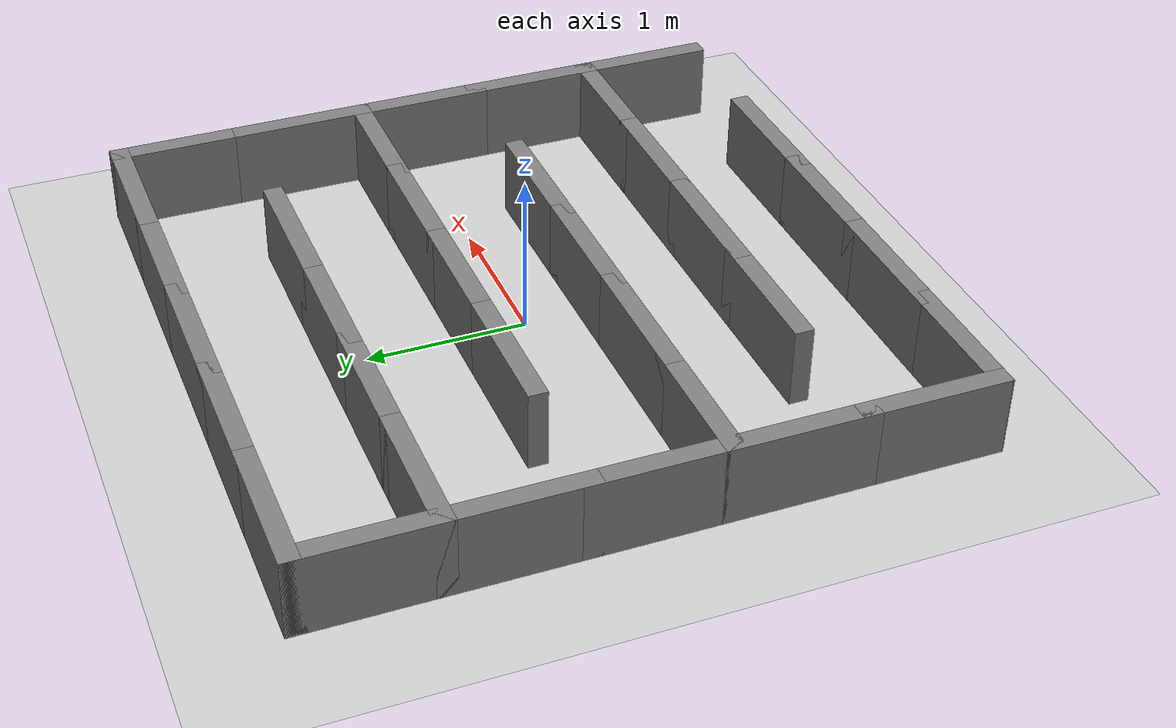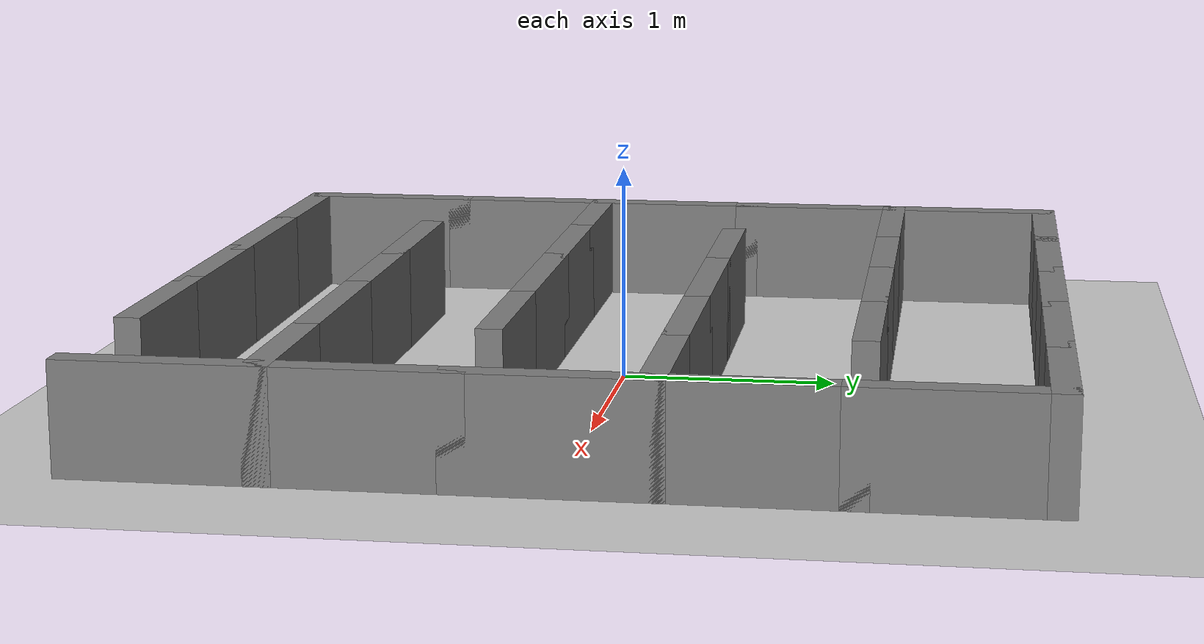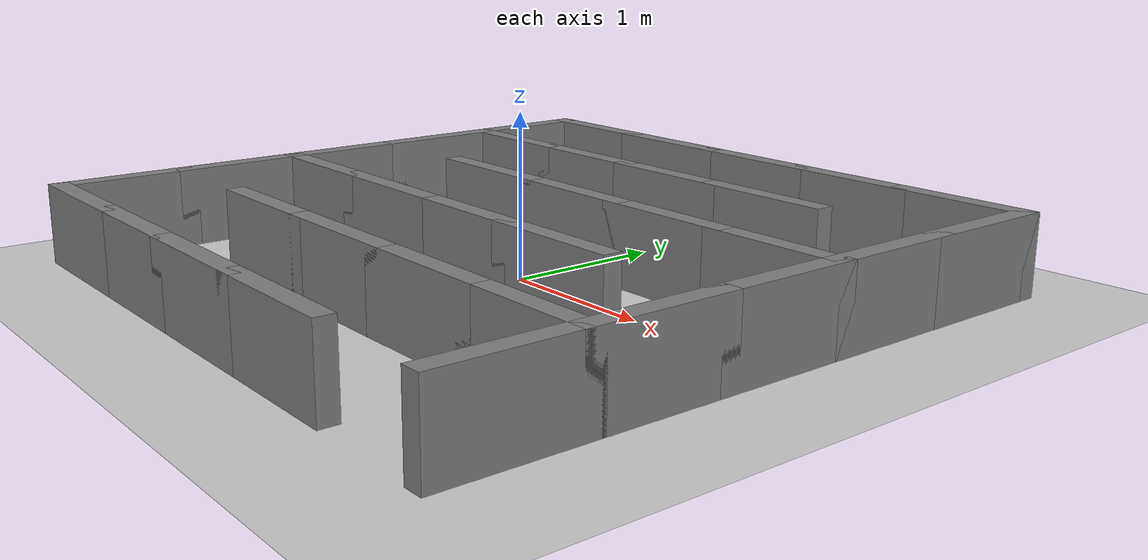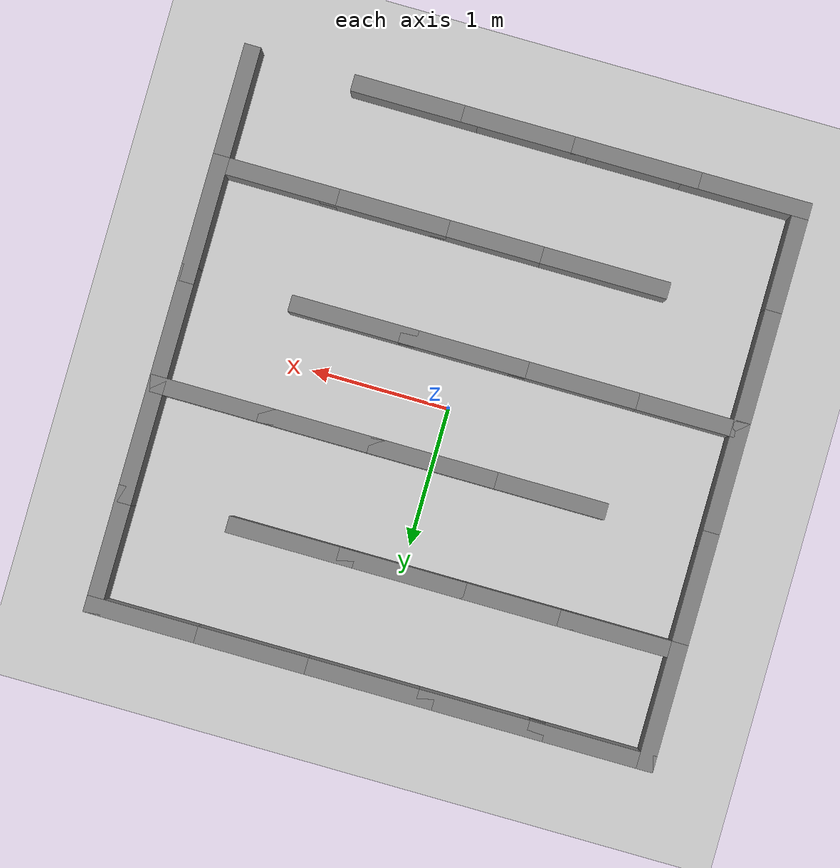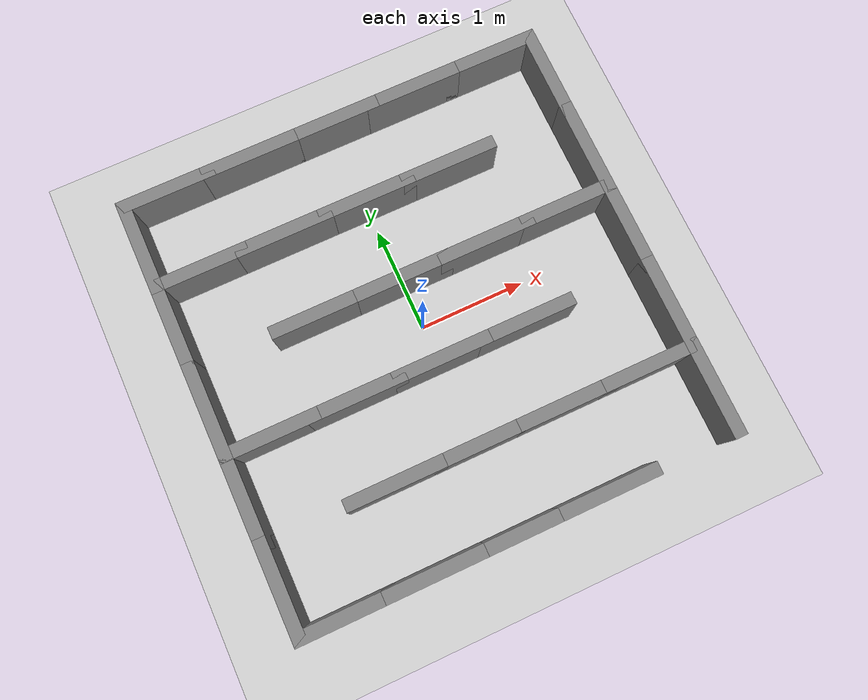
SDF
<?xml version="1.0"?>
<sdf version="1.6">
  <world name="maze_world">
    <include><uri>model://ground_plane</uri></include>
    <include><uri>model://sun</uri></include>
    <scene><shadows>false</shadows></scene>
    <gui fullscreen="0">
      <camera name="user_camera">
        <pose>0 0 10 0 1.5708 0</pose>
        <view_controller>orbit</view_controller>
      </camera>
    </gui>
    <physics type="ode">
      <real_time_update_rate>2000.0</real_time_update_rate>
      <max_step_size>0.001</max_step_size>
      <real_time_factor>2.0</real_time_factor>
    </physics>
    <!-- SNAKE MAZE WALLS -->

    <model name="hw_0">
      <static>true</static>
      <pose>-1.6000 2.0000 0.25 0 0 0</pose>
      <link name="link">
        <collision name="col"><geometry><box><size>0.9200 0.1200 0.5</size></box></geometry></collision>
        <visual name="vis"><geometry><box><size>0.9200 0.1200 0.5</size></box></geometry>
          <material><ambient>0.35 0.35 0.35 1</ambient><diffuse>0.5 0.5 0.5 1</diffuse></material></visual>
      </link>
    </model>
    <model name="hw_1">
      <static>true</static>
      <pose>-0.8000 2.0000 0.25 0 0 0</pose>
      <link name="link">
        <collision name="col"><geometry><box><size>0.9200 0.1200 0.5</size></box></geometry></collision>
        <visual name="vis"><geometry><box><size>0.9200 0.1200 0.5</size></box></geometry>
          <material><ambient>0.35 0.35 0.35 1</ambient><diffuse>0.5 0.5 0.5 1</diffuse></material></visual>
      </link>
    </model>
    <model name="hw_2">
      <static>true</static>
      <pose>0.0000 2.0000 0.25 0 0 0</pose>
      <link name="link">
        <collision name="col"><geometry><box><size>0.9200 0.1200 0.5</size></box></geometry></collision>
        <visual name="vis"><geometry><box><size>0.9200 0.1200 0.5</size></box></geometry>
          <material><ambient>0.35 0.35 0.35 1</ambient><diffuse>0.5 0.5 0.5 1</diffuse></material></visual>
      </link>
    </model>
    <model name="hw_3">
      <static>true</static>
      <pose>0.8000 2.0000 0.25 0 0 0</pose>
      <link name="link">
        <collision name="col"><geometry><box><size>0.9200 0.1200 0.5</size></box></geometry></collision>
        <visual name="vis"><geometry><box><size>0.9200 0.1200 0.5</size></box></geometry>
          <material><ambient>0.35 0.35 0.35 1</ambient><diffuse>0.5 0.5 0.5 1</diffuse></material></visual>
      </link>
    </model>
    <model name="hw_4">
      <static>true</static>
      <pose>1.6000 2.0000 0.25 0 0 0</pose>
      <link name="link">
        <collision name="col"><geometry><box><size>0.9200 0.1200 0.5</size></box></geometry></collision>
        <visual name="vis"><geometry><box><size>0.9200 0.1200 0.5</size></box></geometry>
          <material><ambient>0.35 0.35 0.35 1</ambient><diffuse>0.5 0.5 0.5 1</diffuse></material></visual>
      </link>
    </model>
    <model name="hw_5">
      <static>true</static>
      <pose>-1.6000 1.2000 0.25 0 0 0</pose>
      <link name="link">
        <collision name="col"><geometry><box><size>0.9200 0.1200 0.5</size></box></geometry></collision>
        <visual name="vis"><geometry><box><size>0.9200 0.1200 0.5</size></box></geometry>
          <material><ambient>0.35 0.35 0.35 1</ambient><diffuse>0.5 0.5 0.5 1</diffuse></material></visual>
      </link>
    </model>
    <model name="hw_6">
      <static>true</static>
      <pose>-0.8000 1.2000 0.25 0 0 0</pose>
      <link name="link">
        <collision name="col"><geometry><box><size>0.9200 0.1200 0.5</size></box></geometry></collision>
        <visual name="vis"><geometry><box><size>0.9200 0.1200 0.5</size></box></geometry>
          <material><ambient>0.35 0.35 0.35 1</ambient><diffuse>0.5 0.5 0.5 1</diffuse></material></visual>
      </link>
    </model>
    <model name="hw_7">
      <static>true</static>
      <pose>0.0000 1.2000 0.25 0 0 0</pose>
      <link name="link">
        <collision name="col"><geometry><box><size>0.9200 0.1200 0.5</size></box></geometry></collision>
        <visual name="vis"><geometry><box><size>0.9200 0.1200 0.5</size></box></geometry>
          <material><ambient>0.35 0.35 0.35 1</ambient><diffuse>0.5 0.5 0.5 1</diffuse></material></visual>
      </link>
    </model>
    <model name="hw_8">
      <static>true</static>
      <pose>0.8000 1.2000 0.25 0 0 0</pose>
      <link name="link">
        <collision name="col"><geometry><box><size>0.9200 0.1200 0.5</size></box></geometry></collision>
        <visual name="vis"><geometry><box><size>0.9200 0.1200 0.5</size></box></geometry>
          <material><ambient>0.35 0.35 0.35 1</ambient><diffuse>0.5 0.5 0.5 1</diffuse></material></visual>
      </link>
    </model>
    <model name="hw_9">
      <static>true</static>
      <pose>-0.8000 0.4000 0.25 0 0 0</pose>
      <link name="link">
        <collision name="col"><geometry><box><size>0.9200 0.1200 0.5</size></box></geometry></collision>
        <visual name="vis"><geometry><box><size>0.9200 0.1200 0.5</size></box></geometry>
          <material><ambient>0.35 0.35 0.35 1</ambient><diffuse>0.5 0.5 0.5 1</diffuse></material></visual>
      </link>
    </model>
    <model name="hw_10">
      <static>true</static>
      <pose>0.0000 0.4000 0.25 0 0 0</pose>
      <link name="link">
        <collision name="col"><geometry><box><size>0.9200 0.1200 0.5</size></box></geometry></collision>
        <visual name="vis"><geometry><box><size>0.9200 0.1200 0.5</size></box></geometry>
          <material><ambient>0.35 0.35 0.35 1</ambient><diffuse>0.5 0.5 0.5 1</diffuse></material></visual>
      </link>
    </model>
    <model name="hw_11">
      <static>true</static>
      <pose>0.8000 0.4000 0.25 0 0 0</pose>
      <link name="link">
        <collision name="col"><geometry><box><size>0.9200 0.1200 0.5</size></box></geometry></collision>
        <visual name="vis"><geometry><box><size>0.9200 0.1200 0.5</size></box></geometry>
          <material><ambient>0.35 0.35 0.35 1</ambient><diffuse>0.5 0.5 0.5 1</diffuse></material></visual>
      </link>
    </model>
    <model name="hw_12">
      <static>true</static>
      <pose>1.6000 0.4000 0.25 0 0 0</pose>
      <link name="link">
        <collision name="col"><geometry><box><size>0.9200 0.1200 0.5</size></box></geometry></collision>
        <visual name="vis"><geometry><box><size>0.9200 0.1200 0.5</size></box></geometry>
          <material><ambient>0.35 0.35 0.35 1</ambient><diffuse>0.5 0.5 0.5 1</diffuse></material></visual>
      </link>
    </model>
    <model name="hw_13">
      <static>true</static>
      <pose>-1.6000 -0.4000 0.25 0 0 0</pose>
      <link name="link">
        <collision name="col"><geometry><box><size>0.9200 0.1200 0.5</size></box></geometry></collision>
        <visual name="vis"><geometry><box><size>0.9200 0.1200 0.5</size></box></geometry>
          <material><ambient>0.35 0.35 0.35 1</ambient><diffuse>0.5 0.5 0.5 1</diffuse></material></visual>
      </link>
    </model>
    <model name="hw_14">
      <static>true</static>
      <pose>-0.8000 -0.4000 0.25 0 0 0</pose>
      <link name="link">
        <collision name="col"><geometry><box><size>0.9200 0.1200 0.5</size></box></geometry></collision>
        <visual name="vis"><geometry><box><size>0.9200 0.1200 0.5</size></box></geometry>
          <material><ambient>0.35 0.35 0.35 1</ambient><diffuse>0.5 0.5 0.5 1</diffuse></material></visual>
      </link>
    </model>
    <model name="hw_15">
      <static>true</static>
      <pose>0.0000 -0.4000 0.25 0 0 0</pose>
      <link name="link">
        <collision name="col"><geometry><box><size>0.9200 0.1200 0.5</size></box></geometry></collision>
        <visual name="vis"><geometry><box><size>0.9200 0.1200 0.5</size></box></geometry>
          <material><ambient>0.35 0.35 0.35 1</ambient><diffuse>0.5 0.5 0.5 1</diffuse></material></visual>
      </link>
    </model>
    <model name="hw_16">
      <static>true</static>
      <pose>0.8000 -0.4000 0.25 0 0 0</pose>
      <link name="link">
        <collision name="col"><geometry><box><size>0.9200 0.1200 0.5</size></box></geometry></collision>
        <visual name="vis"><geometry><box><size>0.9200 0.1200 0.5</size></box></geometry>
          <material><ambient>0.35 0.35 0.35 1</ambient><diffuse>0.5 0.5 0.5 1</diffuse></material></visual>
      </link>
    </model>
    <model name="hw_17">
      <static>true</static>
      <pose>-0.8000 -1.2000 0.25 0 0 0</pose>
      <link name="link">
        <collision name="col"><geometry><box><size>0.9200 0.1200 0.5</size></box></geometry></collision>
        <visual name="vis"><geometry><box><size>0.9200 0.1200 0.5</size></box></geometry>
          <material><ambient>0.35 0.35 0.35 1</ambient><diffuse>0.5 0.5 0.5 1</diffuse></material></visual>
      </link>
    </model>
    <model name="hw_18">
      <static>true</static>
      <pose>0.0000 -1.2000 0.25 0 0 0</pose>
      <link name="link">
        <collision name="col"><geometry><box><size>0.9200 0.1200 0.5</size></box></geometry></collision>
        <visual name="vis"><geometry><box><size>0.9200 0.1200 0.5</size></box></geometry>
          <material><ambient>0.35 0.35 0.35 1</ambient><diffuse>0.5 0.5 0.5 1</diffuse></material></visual>
      </link>
    </model>
    <model name="hw_19">
      <static>true</static>
      <pose>0.8000 -1.2000 0.25 0 0 0</pose>
      <link name="link">
        <collision name="col"><geometry><box><size>0.9200 0.1200 0.5</size></box></geometry></collision>
        <visual name="vis"><geometry><box><size>0.9200 0.1200 0.5</size></box></geometry>
          <material><ambient>0.35 0.35 0.35 1</ambient><diffuse>0.5 0.5 0.5 1</diffuse></material></visual>
      </link>
    </model>
    <model name="hw_20">
      <static>true</static>
      <pose>1.6000 -1.2000 0.25 0 0 0</pose>
      <link name="link">
        <collision name="col"><geometry><box><size>0.9200 0.1200 0.5</size></box></geometry></collision>
        <visual name="vis"><geometry><box><size>0.9200 0.1200 0.5</size></box></geometry>
          <material><ambient>0.35 0.35 0.35 1</ambient><diffuse>0.5 0.5 0.5 1</diffuse></material></visual>
      </link>
    </model>
    <model name="hw_21">
      <static>true</static>
      <pose>-1.6000 -2.0000 0.25 0 0 0</pose>
      <link name="link">
        <collision name="col"><geometry><box><size>0.9200 0.1200 0.5</size></box></geometry></collision>
        <visual name="vis"><geometry><box><size>0.9200 0.1200 0.5</size></box></geometry>
          <material><ambient>0.35 0.35 0.35 1</ambient><diffuse>0.5 0.5 0.5 1</diffuse></material></visual>
      </link>
    </model>
    <model name="hw_22">
      <static>true</static>
      <pose>-0.8000 -2.0000 0.25 0 0 0</pose>
      <link name="link">
        <collision name="col"><geometry><box><size>0.9200 0.1200 0.5</size></box></geometry></collision>
        <visual name="vis"><geometry><box><size>0.9200 0.1200 0.5</size></box></geometry>
          <material><ambient>0.35 0.35 0.35 1</ambient><diffuse>0.5 0.5 0.5 1</diffuse></material></visual>
      </link>
    </model>
    <model name="hw_23">
      <static>true</static>
      <pose>0.0000 -2.0000 0.25 0 0 0</pose>
      <link name="link">
        <collision name="col"><geometry><box><size>0.9200 0.1200 0.5</size></box></geometry></collision>
        <visual name="vis"><geometry><box><size>0.9200 0.1200 0.5</size></box></geometry>
          <material><ambient>0.35 0.35 0.35 1</ambient><diffuse>0.5 0.5 0.5 1</diffuse></material></visual>
      </link>
    </model>
    <model name="hw_24">
      <static>true</static>
      <pose>0.8000 -2.0000 0.25 0 0 0</pose>
      <link name="link">
        <collision name="col"><geometry><box><size>0.9200 0.1200 0.5</size></box></geometry></collision>
        <visual name="vis"><geometry><box><size>0.9200 0.1200 0.5</size></box></geometry>
          <material><ambient>0.35 0.35 0.35 1</ambient><diffuse>0.5 0.5 0.5 1</diffuse></material></visual>
      </link>
    </model>
    <model name="vw_25">
      <static>true</static>
      <pose>-2.0000 1.6000 0.25 0 0 0</pose>
      <link name="link">
        <collision name="col"><geometry><box><size>0.1200 0.9200 0.5</size></box></geometry></collision>
        <visual name="vis"><geometry><box><size>0.1200 0.9200 0.5</size></box></geometry>
          <material><ambient>0.35 0.35 0.35 1</ambient><diffuse>0.5 0.5 0.5 1</diffuse></material></visual>
      </link>
    </model>
    <model name="vw_26">
      <static>true</static>
      <pose>2.0000 1.6000 0.25 0 0 0</pose>
      <link name="link">
        <collision name="col"><geometry><box><size>0.1200 0.9200 0.5</size></box></geometry></collision>
        <visual name="vis"><geometry><box><size>0.1200 0.9200 0.5</size></box></geometry>
          <material><ambient>0.35 0.35 0.35 1</ambient><diffuse>0.5 0.5 0.5 1</diffuse></material></visual>
      </link>
    </model>
    <model name="vw_27">
      <static>true</static>
      <pose>-2.0000 0.8000 0.25 0 0 0</pose>
      <link name="link">
        <collision name="col"><geometry><box><size>0.1200 0.9200 0.5</size></box></geometry></collision>
        <visual name="vis"><geometry><box><size>0.1200 0.9200 0.5</size></box></geometry>
          <material><ambient>0.35 0.35 0.35 1</ambient><diffuse>0.5 0.5 0.5 1</diffuse></material></visual>
      </link>
    </model>
    <model name="vw_28">
      <static>true</static>
      <pose>2.0000 0.8000 0.25 0 0 0</pose>
      <link name="link">
        <collision name="col"><geometry><box><size>0.1200 0.9200 0.5</size></box></geometry></collision>
        <visual name="vis"><geometry><box><size>0.1200 0.9200 0.5</size></box></geometry>
          <material><ambient>0.35 0.35 0.35 1</ambient><diffuse>0.5 0.5 0.5 1</diffuse></material></visual>
      </link>
    </model>
    <model name="vw_29">
      <static>true</static>
      <pose>-2.0000 0.0000 0.25 0 0 0</pose>
      <link name="link">
        <collision name="col"><geometry><box><size>0.1200 0.9200 0.5</size></box></geometry></collision>
        <visual name="vis"><geometry><box><size>0.1200 0.9200 0.5</size></box></geometry>
          <material><ambient>0.35 0.35 0.35 1</ambient><diffuse>0.5 0.5 0.5 1</diffuse></material></visual>
      </link>
    </model>
    <model name="vw_30">
      <static>true</static>
      <pose>2.0000 0.0000 0.25 0 0 0</pose>
      <link name="link">
        <collision name="col"><geometry><box><size>0.1200 0.9200 0.5</size></box></geometry></collision>
        <visual name="vis"><geometry><box><size>0.1200 0.9200 0.5</size></box></geometry>
          <material><ambient>0.35 0.35 0.35 1</ambient><diffuse>0.5 0.5 0.5 1</diffuse></material></visual>
      </link>
    </model>
    <model name="vw_31">
      <static>true</static>
      <pose>-2.0000 -0.8000 0.25 0 0 0</pose>
      <link name="link">
        <collision name="col"><geometry><box><size>0.1200 0.9200 0.5</size></box></geometry></collision>
        <visual name="vis"><geometry><box><size>0.1200 0.9200 0.5</size></box></geometry>
          <material><ambient>0.35 0.35 0.35 1</ambient><diffuse>0.5 0.5 0.5 1</diffuse></material></visual>
      </link>
    </model>
    <model name="vw_32">
      <static>true</static>
      <pose>2.0000 -0.8000 0.25 0 0 0</pose>
      <link name="link">
        <collision name="col"><geometry><box><size>0.1200 0.9200 0.5</size></box></geometry></collision>
        <visual name="vis"><geometry><box><size>0.1200 0.9200 0.5</size></box></geometry>
          <material><ambient>0.35 0.35 0.35 1</ambient><diffuse>0.5 0.5 0.5 1</diffuse></material></visual>
      </link>
    </model>
    <model name="vw_33">
      <static>true</static>
      <pose>-2.0000 -1.6000 0.25 0 0 0</pose>
      <link name="link">
        <collision name="col"><geometry><box><size>0.1200 0.9200 0.5</size></box></geometry></collision>
        <visual name="vis"><geometry><box><size>0.1200 0.9200 0.5</size></box></geometry>
          <material><ambient>0.35 0.35 0.35 1</ambient><diffuse>0.5 0.5 0.5 1</diffuse></material></visual>
      </link>
    </model>
    <model name="vw_34">
      <static>true</static>
      <pose>2.0000 -1.6000 0.25 0 0 0</pose>
      <link name="link">
        <collision name="col"><geometry><box><size>0.1200 0.9200 0.5</size></box></geometry></collision>
        <visual name="vis"><geometry><box><size>0.1200 0.9200 0.5</size></box></geometry>
          <material><ambient>0.35 0.35 0.35 1</ambient><diffuse>0.5 0.5 0.5 1</diffuse></material></visual>
      </link>
    </model>
  </world>
</sdf>
